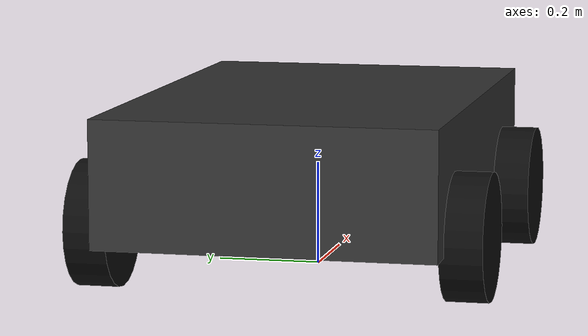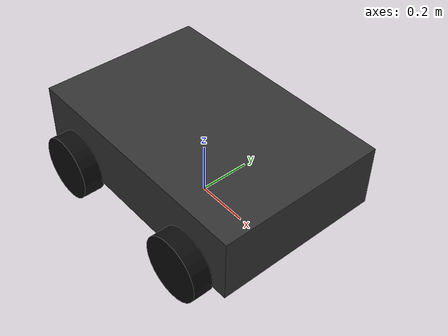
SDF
<?xml version="1.0" ?>
<sdf version="1.9">
  <model name="ridgeback">
    <self_collide>false</self_collide>

    <link name="base_link">
      <pose>0 0 0.22 0 0 0</pose>
      <inertial>
        <mass>40</mass>
        <inertia>
          <ixx>2.0</ixx><iyy>3.0</iyy><izz>4.0</izz>
          <ixy>0</ixy><ixz>0</ixz><iyz>0</iyz>
        </inertia>
      </inertial>
      <collision name="base_collision">
        <geometry><box><size>0.96 0.64 0.24</size></box></geometry>
      </collision>
      <visual name="base_visual">
        <geometry><box><size>0.96 0.64 0.24</size></box></geometry>
        <material>
          <ambient>0.15 0.15 0.15 1</ambient>
          <diffuse>0.2 0.2 0.2 1</diffuse>
        </material>
      </visual>
    </link>

    <link name="front_left_wheel">
      <pose>0.3 0.35 0.12 1.5708 0 0</pose>
      <inertial>
        <mass>2</mass>
        <inertia><ixx>0.01</ixx><iyy>0.01</iyy><izz>0.01</izz><ixy>0</ixy><ixz>0</ixz><iyz>0</iyz></inertia>
      </inertial>
      <collision name="collision">
        <geometry><cylinder><radius>0.12</radius><length>0.08</length></cylinder></geometry>
        <surface><friction><ode><mu>1.0</mu><mu2>1.0</mu2></ode></friction></surface>
      </collision>
      <visual name="visual">
        <geometry><cylinder><radius>0.12</radius><length>0.08</length></cylinder></geometry>
        <material><ambient>0.05 0.05 0.05 1</ambient><diffuse>0.05 0.05 0.05 1</diffuse></material>
      </visual>
    </link>

    <link name="front_right_wheel">
      <pose>0.3 -0.35 0.12 1.5708 0 0</pose>
      <inertial>
        <mass>2</mass>
        <inertia><ixx>0.01</ixx><iyy>0.01</iyy><izz>0.01</izz><ixy>0</ixy><ixz>0</ixz><iyz>0</iyz></inertia>
      </inertial>
      <collision name="collision">
        <geometry><cylinder><radius>0.12</radius><length>0.08</length></cylinder></geometry>
        <surface><friction><ode><mu>1.0</mu><mu2>1.0</mu2></ode></friction></surface>
      </collision>
      <visual name="visual">
        <geometry><cylinder><radius>0.12</radius><length>0.08</length></cylinder></geometry>
        <material><ambient>0.05 0.05 0.05 1</ambient><diffuse>0.05 0.05 0.05 1</diffuse></material>
      </visual>
    </link>

    <link name="rear_left_wheel">
      <pose>-0.3 0.35 0.12 1.5708 0 0</pose>
      <inertial>
        <mass>2</mass>
        <inertia><ixx>0.01</ixx><iyy>0.01</iyy><izz>0.01</izz><ixy>0</ixy><ixz>0</ixz><iyz>0</iyz></inertia>
      </inertial>
      <collision name="collision">
        <geometry><cylinder><radius>0.12</radius><length>0.08</length></cylinder></geometry>
        <surface><friction><ode><mu>1.0</mu><mu2>1.0</mu2></ode></friction></surface>
      </collision>
      <visual name="visual">
        <geometry><cylinder><radius>0.12</radius><length>0.08</length></cylinder></geometry>
        <material><ambient>0.05 0.05 0.05 1</ambient><diffuse>0.05 0.05 0.05 1</diffuse></material>
      </visual>
    </link>

    <link name="rear_right_wheel">
      <pose>-0.3 -0.35 0.12 1.5708 0 0</pose>
      <inertial>
        <mass>2</mass>
        <inertia><ixx>0.01</ixx><iyy>0.01</iyy><izz>0.01</izz><ixy>0</ixy><ixz>0</ixz><iyz>0</iyz></inertia>
      </inertial>
      <collision name="collision">
        <geometry><cylinder><radius>0.12</radius><length>0.08</length></cylinder></geometry>
        <surface><friction><ode><mu>1.0</mu><mu2>1.0</mu2></ode></friction></surface>
      </collision>
      <visual name="visual">
        <geometry><cylinder><radius>0.12</radius><length>0.08</length></cylinder></geometry>
        <material><ambient>0.05 0.05 0.05 1</ambient><diffuse>0.05 0.05 0.05 1</diffuse></material>
      </visual>
    </link>

    <joint name="front_left_wheel_joint" type="revolute">
      <parent>base_link</parent><child>front_left_wheel</child>
      <axis><xyz>0 0 1</xyz><limit><lower>-1e16</lower><upper>1e16</upper></limit></axis>
    </joint>
    <joint name="front_right_wheel_joint" type="revolute">
      <parent>base_link</parent><child>front_right_wheel</child>
      <axis><xyz>0 0 1</xyz><limit><lower>-1e16</lower><upper>1e16</upper></limit></axis>
    </joint>
    <joint name="rear_left_wheel_joint" type="revolute">
      <parent>base_link</parent><child>rear_left_wheel</child>
      <axis><xyz>0 0 1</xyz><limit><lower>-1e16</lower><upper>1e16</upper></limit></axis>
    </joint>
    <joint name="rear_right_wheel_joint" type="revolute">
      <parent>base_link</parent><child>rear_right_wheel</child>
      <axis><xyz>0 0 1</xyz><limit><lower>-1e16</lower><upper>1e16</upper></limit></axis>
    </joint>

    <link name="imu_link">
      <pose>0 0 0.34 0 0 0</pose>
      <inertial>
        <mass>0.1</mass>
        <inertia><ixx>0.0001</ixx><iyy>0.0001</iyy><izz>0.0001</izz><ixy>0</ixy><ixz>0</ixz><iyz>0</iyz></inertia>
      </inertial>
      <sensor name="imu_sensor" type="imu">
        <always_on>true</always_on>
        <update_rate>100</update_rate>
        <topic>imu_sensor/imu</topic>
      </sensor>
    </link>
    <joint name="imu_joint" type="fixed">
      <parent>base_link</parent><child>imu_link</child>
    </joint>

    <link name="lidar_link">
      <pose>0.4 0 0.36 0 0 0</pose>
      <inertial>
        <mass>0.1</mass>
        <inertia><ixx>0.0001</ixx><iyy>0.0001</iyy><izz>0.0001</izz><ixy>0</ixy><ixz>0</ixz><iyz>0</iyz></inertia>
      </inertial>
      <sensor name="gpu_lidar" type="gpu_lidar">
        <always_on>true</always_on>
        <update_rate>20</update_rate>
        <topic>gpu_lidar/scan</topic>
        <lidar>
          <scan>
            <horizontal>
              <samples>360</samples>
              <resolution>1</resolution>
              <min_angle>-2.356</min_angle>
              <max_angle>2.356</max_angle>
            </horizontal>
          </scan>
          <range>
            <min>0.08</min>
            <max>40.0</max>
            <resolution>0.01</resolution>
          </range>
        </lidar>
        <visualize>true</visualize>
      </sensor>
    </link>
    <joint name="lidar_joint" type="fixed">
      <parent>base_link</parent><child>lidar_link</child>
    </joint>

    <plugin filename="ignition-gazebo-diff-drive-system" name="ignition::gazebo::systems::DiffDrive">
      <left_joint>front_left_wheel_joint</left_joint>
      <left_joint>rear_left_wheel_joint</left_joint>
      <right_joint>front_right_wheel_joint</right_joint>
      <right_joint>rear_right_wheel_joint</right_joint>
      <wheel_separation>0.7</wheel_separation>
      <wheel_radius>0.12</wheel_radius>
      <odom_publish_frequency>50</odom_publish_frequency>
      <topic>/model/ridgeback/cmd_vel</topic>
      <odom_topic>odometry</odom_topic>
      <frame_id>odom</frame_id>
      <child_frame_id>base_link</child_frame_id>
    </plugin>
    <plugin filename="ignition-gazebo-joint-state-publisher-system" name="ignition::gazebo::systems::JointStatePublisher"/>

  </model>
</sdf>
